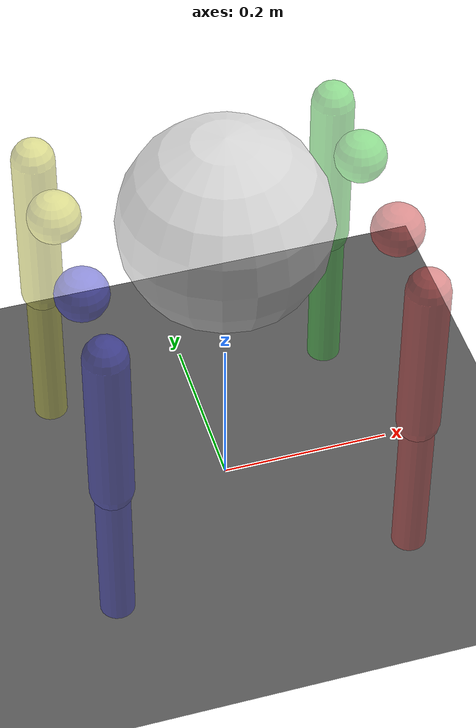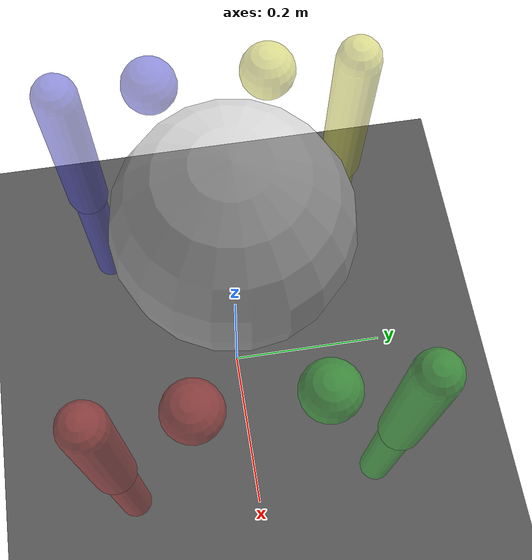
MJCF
<mujoco model="XG_FRICTION_ID">
  <!--
    XG 四足机器人 - 摩擦辨识专用模型
    基于 xg_freefall.xml，添加：
    1. 地面接触（启用碰撞）
    2. 关节阻尼 / 库仑摩擦 / 转子惯量字段（初始为零，由辨识脚本注入）
    3. 使用简单几何体（无需 STL 文件即可运行）
  -->

  <compiler angle="radian"/>

  <option timestep="0.001" iterations="10" ls_iterations="10" solver="Newton" integrator="Euler">
    <flag contact="enable"/>
  </option>

  <default>
    <!--geom friction 关节摩擦系数-->
    <!-- friction:滑动，扭动，滚动摩擦系数-->
    <!-- solref约束刚度与阻尼-->
    <!-- solimp="0.9 0.92 0.015" — 约束软化-->
    <!--这行配置的意思是：所有几何体默认有真实的滑动摩擦，接触求解用偏硬的约束 + 轻微过阻尼，允许极小的穿透来避免数值震荡。 脚本里只有足尖 geom 真正启用碰撞（contype=1），其余连杆都显式关了，所以这些摩擦参数实际只作用在四只脚上。-->
    <geom condim="3" friction="0.8 0.005 0.0001" solref="0.035 1.1" solimp="0.9 0.92 0.015"/>
    <joint damping="0" frictionloss="0" armature="0.01"/>

  </default>

  <worldbody>
    <geom name="floor" type="plane" size="50 50 0.01"
          contype="1" conaffinity="1" friction="1.0 0.005 0.0001" condim="3"
          rgba="0.35 0.35 0.35 1"/>

    <light name="spotlight" mode="fixed" directional="true"
           diffuse="0.8 0.8 0.8" specular="0.3 0.3 0.3" pos="0 0 5" dir="0 0 -1"/>

    <!-- torso -->
    <body name="torso" pos="0 0 0.4">
      <inertial pos="0.0054244583 -0.00036330247 0.0060908623" quat="1.0 0.0 0.0 0.0"
          mass="6.2683759"
          diaginertia="0.027359128 0.084984679 0.099223551" />
      <freejoint />
      <geom type="sphere" size="0.12" pos="0 0 0" contype="0" conaffinity="0" rgba="0.75 0.75 0.75 0.5"/>

      <!-- FAR (Front Right) -->
      <body name="FAR_ABAD_LINK" pos="0.17449 -0.062 0">
        <inertial pos="-0.027074453 0.015458828 -0.0000094167931" quat="0.37576 0.37576 0.599003 0.599003" mass="0.45409769" diaginertia="0.000251027 0.0004874808 0.00054102144"/>
        <joint name="FAR_ABAD_JOINT" pos="0 0 0" axis="1 0 0" range="-0.4887 0.4887"/>
        <geom type="sphere" size="0.03" contype="0" conaffinity="0" rgba="0.8 0.2 0.2 0.5"/>
        <body name="FAR_HIP_LINK" pos="0 -0.097399 0">
          <inertial pos="-0.0034244521 0.0427302652 -0.022325654" quat="0.959702 -0.277944 0.0414243 0.00187848" mass="1.50799" diaginertia="0.0071458222 0.0049559736 0.0032698207"/>
          <joint name="FAR_HIP_JOINT" pos="0 0 0" axis="0 1 0" range="-1.1519 2.967"/>
          <geom type="capsule" size="0.025" fromto="0 0 0 0 0 -0.2" contype="0" conaffinity="0" rgba="0.8 0.2 0.2 0.5"/>
          <body name="FAR_KNEE_LINK" pos="0 0 -0.2">
            <inertial pos="0.0076906034 0 -0.091770469" quat="0.706927 0.0150821 0.0150981 0.706964" mass="0.20733416" diaginertia="0.0015906767 0.0016230863 0.000049932184"/>
            <joint name="FAR_KNEE_JOINT" pos="0 0 0" axis="0 1 0" range="-2.723 -0.602"/>
            <geom type="capsule" size="0.02" fromto="0 0 0 0 0 -0.21366" contype="0" conaffinity="0" rgba="0.8 0.2 0.2 0.5"/>
            <body name="FAR_FOOT_LINK" pos="0 0 -0.21366">
              <inertial pos="0 0 0" mass="0.01" diaginertia="0.00001 0.00001 0.00001"/>
              <geom name="FR" type="sphere" size="0.02" contype="1" conaffinity="1" rgba="1 0 0 0.8"/>
            </body>
          </body>
        </body>
      </body>

      <!-- FBL (Front Left) -->
      <body name="FBL_ABAD_LINK" pos="0.17449 0.062 0">
        <inertial pos="-0.027074453 -0.015458828 0.0000094167931" quat="0.599003 0.599003 0.37576 0.37576" mass="0.45409769" diaginertia="0.000251027 0.0004874808 0.00054102144"/>
        <joint name="FBL_ABAD_JOINT" pos="0 0 0" axis="1 0 0" range="-0.4887 0.4887"/>
        <geom type="sphere" size="0.03" contype="0" conaffinity="0" rgba="0.2 0.8 0.2 0.5"/>
        <body name="FBL_HIP_LINK" pos="0 0.097412 0">
          <inertial pos="-0.00334388 -0.042909 -0.0216077" quat="0.956046 0.289938 0.043689 -0.00186998" mass="1.50165" diaginertia="0.0069465757 0.0047644743 0.0032561192"/>
          <joint name="FBL_HIP_JOINT" pos="0 0 0" axis="0 1 0" range="-1.1519 2.967"/>
          <geom type="capsule" size="0.025" fromto="0 0 0 0 0 -0.2" contype="0" conaffinity="0" rgba="0.2 0.8 0.2 0.5"/>
          <body name="FBL_KNEE_LINK" pos="0 0 -0.2">
            <inertial pos="0.0076906034 0 -0.091770469" quat="0.706959 0.0150884 0.0150689 0.706933" mass="0.20733416" diaginertia="0.0015906767 0.0016230863 0.000049932184"/>
            <joint name="FBL_KNEE_JOINT" pos="0 0 0" axis="0 1 0" range="-2.723 -0.602"/>
            <geom type="capsule" size="0.02" fromto="0 0 0 0 0 -0.21366" contype="0" conaffinity="0" rgba="0.2 0.8 0.2 0.5"/>
            <body name="FBL_FOOT_LINK" pos="0 0 -0.21366">
              <inertial pos="0 0 0" mass="0.01" diaginertia="0.00001 0.00001 0.00001"/>
              <geom name="FL" type="sphere" size="0.02" contype="1" conaffinity="1" rgba="0 1 0 0.8"/>
            </body>
          </body>
        </body>
      </body>

      <!-- RAR (Rear Right) -->
      <body name="RAR_ABAD_LINK" pos="-0.17449 -0.062 0">
        <inertial pos="0.027074453 0.015458828 0.0000094167931" quat="0.599003 0.599003 0.37576 0.37576" mass="0.45409769" diaginertia="0.000251027 0.0004874808 0.00054102144"/>
        <joint name="RAR_ABAD_JOINT" pos="0 0 0" axis="1 0 0" range="-0.4887 0.4887"/>
        <geom type="sphere" size="0.03" contype="0" conaffinity="0" rgba="0.2 0.2 0.8 0.5"/>
        <body name="RAR_HIP_LINK" pos="0 -0.0974 0">
          <inertial pos="-0.0034244521 0.0427302652 -0.022325654" quat="0.959439 -0.278897 0.0408485 0.00491543" mass="1.50799" diaginertia="0.0071458222 0.0049559736 0.0032698207"/>
          <joint name="RAR_HIP_JOINT" pos="0 0 0" axis="0 1 0" range="-1.1519 2.967"/>
          <geom type="capsule" size="0.025" fromto="0 0 0 0 0 -0.2" contype="0" conaffinity="0" rgba="0.2 0.2 0.8 0.5"/>
          <body name="RAR_KNEE_LINK" pos="0 0 -0.2">
            <inertial pos="0.0076906034 0 -0.091770469" quat="0.706927 0.0150821 0.0150981 0.706964" mass="0.20733416" diaginertia="0.0015906767 0.0016230863 0.000049932184"/>
            <joint name="RAR_KNEE_JOINT" pos="0 0 0" axis="0 1 0" range="-2.723 -0.602"/>
            <geom type="capsule" size="0.02" fromto="0 0 0 0 0 -0.21366" contype="0" conaffinity="0" rgba="0.2 0.2 0.8 0.5"/>
            <body name="RAR_FOOT_LINK" pos="0 0 -0.21366">
              <inertial pos="0 0 0" mass="0.01" diaginertia="0.00001 0.00001 0.00001"/>
              <geom name="RR" type="sphere" size="0.02" contype="1" conaffinity="1" rgba="0 0 1 0.8"/>
            </body>
          </body>
        </body>
      </body>

      <!-- RBL (Rear Left) -->
      <body name="RBL_ABAD_LINK" pos="-0.17449 0.062 0">
        <inertial pos="0.027074453 -0.015458828 -0.0000094167931" quat="0.37576 0.37576 0.599003 0.599003" mass="0.45409769" diaginertia="0.000251027 0.0004874808 0.00054102144"/>
        <joint name="RBL_ABAD_JOINT" pos="0 0 0" axis="1 0 0" range="-0.4887 0.4887"/>
        <geom type="sphere" size="0.03" contype="0" conaffinity="0" rgba="0.8 0.8 0.2 0.5"/>
        <body name="RBL_HIP_LINK" pos="0 0.097412 0">
          <inertial pos="-0.00334388 -0.042909 -0.0216077" quat="0.956142 0.289658 0.0430314 -0.006202" mass="1.50165" diaginertia="0.0069465757 0.0047644743 0.0032561192"/>
          <joint name="RBL_HIP_JOINT" pos="0 0 0" axis="0 1 0" range="-1.1519 2.967"/>
          <geom type="capsule" size="0.025" fromto="0 0 0 0 0 -0.2" contype="0" conaffinity="0" rgba="0.8 0.8 0.2 0.5"/>
          <body name="RBL_KNEE_LINK" pos="0 0 -0.2">
            <inertial pos="0.0076906034 0 -0.091770469" quat="0.706959 0.0150882 0.0150688 0.706933" mass="0.20733416" diaginertia="0.0015906767 0.0016230863 0.000049932184"/>
            <joint name="RBL_KNEE_JOINT" pos="0 0 0" axis="0 1 0" range="-2.723 -0.602"/>
            <geom type="capsule" size="0.02" fromto="0 0 0 0 0 -0.21366" contype="0" conaffinity="0" rgba="0.8 0.8 0.2 0.5"/>
            <body name="RBL_FOOT_LINK" pos="0 0 -0.21366">
              <inertial pos="0 0 0" mass="0.01" diaginertia="0.00001 0.00001 0.00001"/>
              <geom name="RL" type="sphere" size="0.02" contype="1" conaffinity="1" rgba="1 1 0 0.8"/>
            </body>
          </body>
        </body>
      </body>

    </body>
  </worldbody>

  <actuator>
    <motor name="FAR_ABAD" joint="FAR_ABAD_JOINT" />
    <motor name="FAR_HIP" joint="FAR_HIP_JOINT" />
    <motor name="FAR_KNEE" joint="FAR_KNEE_JOINT" />
    <motor name="FBL_ABAD" joint="FBL_ABAD_JOINT" />
    <motor name="FBL_HIP" joint="FBL_HIP_JOINT" />
    <motor name="FBL_KNEE" joint="FBL_KNEE_JOINT" />
    <motor name="RAR_ABAD" joint="RAR_ABAD_JOINT" />
    <motor name="RAR_HIP" joint="RAR_HIP_JOINT" />
    <motor name="RAR_KNEE" joint="RAR_KNEE_JOINT" />
    <motor name="RBL_ABAD" joint="RBL_ABAD_JOINT" />
    <motor name="RBL_HIP" joint="RBL_HIP_JOINT" />
    <motor name="RBL_KNEE" joint="RBL_KNEE_JOINT" />
  </actuator>

  <keyframe>
    <key name="home" qpos="0 0 0.4 1 0 0 0 0 0.8 -1.5 0 0.8 -1.5 0 0.8 -1.5 0 0.8 -1.5"/>
  </keyframe>
</mujoco>
